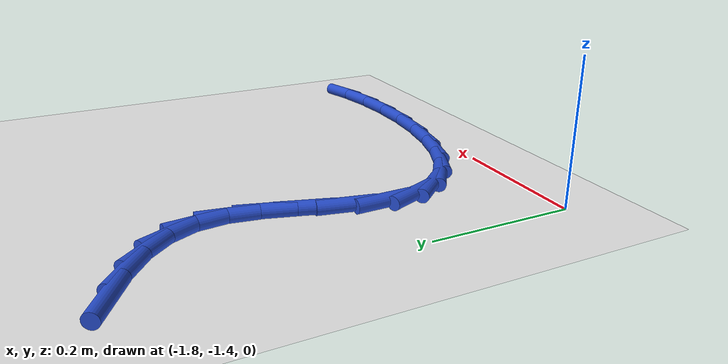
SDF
<sdf version="1.6">
 <world name="default">
  <model name="ground_plane">
   <static>1</static>
   <link name="link">
    <collision name="collision">
     <geometry><plane><normal>0 0 1</normal><size>100 100</size></plane></geometry>
     <surface><friction><ode><mu>100</mu><mu2>50</mu2></ode></friction></surface>
    </collision>
    <visual name="visual">
     <cast_shadows>0</cast_shadows>
     <geometry><plane><normal>0 0 1</normal><size>100 100</size></plane></geometry>
     <material>
      <script><uri>file://media/materials/scripts/gazebo.material</uri><name>Gazebo/WhiteGlow</name></script>
     </material>
    </visual>
   </link>
  </model>
  <model name="line">
   <link name="link_110">
    <pose>-1.7734945579756471 -0.8416956939638869 0.01 0 1.57 -0.5313624632419515</pose>
    <collision name="collision">
     <geometry><cylinder><radius>0.01</radius><length>0.08</length></cylinder></geometry>
    </collision>
    <visual name="visual">
     <material>
      <script><name>Gazebo/Blue</name><uri>file://media/materials/scripts/gazebo.material</uri></script>
     </material>
     <geometry><cylinder><radius>0.01</radius><length>0.08</length></cylinder></geometry>
    </visual>
   </link>
   <link name="link_111">
    <pose>-1.7310457765833414 -0.8666449088166526 0.01 0 1.57 -0.6617725610972109</pose>
    <collision name="collision">
     <geometry><cylinder><radius>0.01</radius><length>0.08</length></cylinder></geometry>
    </collision>
    <visual name="visual">
     <material>
      <script><name>Gazebo/Blue</name><uri>file://media/materials/scripts/gazebo.material</uri></script>
     </material>
     <geometry><cylinder><radius>0.01</radius><length>0.08</length></cylinder></geometry>
    </visual>
   </link>
   <link name="link_112">
    <pose>-1.6955286083273333 -0.8943109740696709 0.01 0 1.57 -0.8601564828133983</pose>
    <collision name="collision">
     <geometry><cylinder><radius>0.01</radius><length>0.08</length></cylinder></geometry>
    </collision>
    <visual name="visual">
     <material>
      <script><name>Gazebo/Blue</name><uri>file://media/materials/scripts/gazebo.material</uri></script>
     </material>
     <geometry><cylinder><radius>0.01</radius><length>0.08</length></cylinder></geometry>
    </visual>
   </link>
   <link name="link_113">
    <pose>-1.668660795700097 -0.9255293179163608 0.01 0 1.57 -1.1368348751783302</pose>
    <collision name="collision">
     <geometry><cylinder><radius>0.01</radius><length>0.08</length></cylinder></geometry>
    </collision>
    <visual name="visual">
     <material>
      <script><name>Gazebo/Blue</name><uri>file://media/materials/scripts/gazebo.material</uri></script>
     </material>
     <geometry><cylinder><radius>0.01</radius><length>0.08</length></cylinder></geometry>
    </visual>
   </link>
   <link name="link_114">
    <pose>-1.652160081194107 -0.961135368550142 0.01 0 1.57 -1.4627862792251112</pose>
    <collision name="collision">
     <geometry><cylinder><radius>0.01</radius><length>0.08</length></cylinder></geometry>
    </collision>
    <visual name="visual">
     <material>
      <script><name>Gazebo/Blue</name><uri>file://media/materials/scripts/gazebo.material</uri></script>
     </material>
     <geometry><cylinder><radius>0.01</radius><length>0.08</length></cylinder></geometry>
    </visual>
   </link>
   <link name="link_115">
    <pose>-1.6477333979097377 -1.0019598643572034 0.01 0 1.57 1.4148833865757744</pose>
    <collision name="collision">
     <geometry><cylinder><radius>0.01</radius><length>0.08</length></cylinder></geometry>
    </collision>
    <visual name="visual">
     <material>
      <script><name>Gazebo/Blue</name><uri>file://media/materials/scripts/gazebo.material</uri></script>
     </material>
     <geometry><cylinder><radius>0.01</radius><length>0.08</length></cylinder></geometry>
    </visual>
   </link>
   <link name="link_116">
    <pose>-1.654956035739066 -1.0479087002504888 0.01 0 1.57 1.2966157001727758</pose>
    <collision name="collision">
     <geometry><cylinder><radius>0.01</radius><length>0.08</length></cylinder></geometry>
    </collision>
    <visual name="visual">
     <material>
      <script><name>Gazebo/Blue</name><uri>file://media/materials/scripts/gazebo.material</uri></script>
     </material>
     <geometry><cylinder><radius>0.01</radius><length>0.08</length></cylinder></geometry>
    </visual>
   </link>
   <link name="link_117">
    <pose>-1.6687235547020451 -1.0968574043292483 0.01 0 1.57 1.284529829563111</pose>
    <collision name="collision">
     <geometry><cylinder><radius>0.01</radius><length>0.08</length></cylinder></geometry>
    </collision>
    <visual name="visual">
     <material>
      <script><name>Gazebo/Blue</name><uri>file://media/materials/scripts/gazebo.material</uri></script>
     </material>
     <geometry><cylinder><radius>0.01</radius><length>0.08</length></cylinder></geometry>
    </visual>
   </link>
   <link name="link_118">
    <pose>-1.683309967605338 -1.1464118376671768 0.01 0 1.57 1.3708633452989625</pose>
    <collision name="collision">
     <geometry><cylinder><radius>0.01</radius><length>0.08</length></cylinder></geometry>
    </collision>
    <visual name="visual">
     <material>
      <script><name>Gazebo/Blue</name><uri>file://media/materials/scripts/gazebo.material</uri></script>
     </material>
     <geometry><cylinder><radius>0.01</radius><length>0.08</length></cylinder></geometry>
    </visual>
   </link>
   <link name="link_119">
    <pose>-1.692989287255609 -1.1941778613379703 0.01 0 1.57 -1.5492678069849917</pose>
    <collision name="collision">
     <geometry><cylinder><radius>0.01</radius><length>0.08</length></cylinder></geometry>
    </collision>
    <visual name="visual">
     <material>
      <script><name>Gazebo/Blue</name><uri>file://media/materials/scripts/gazebo.material</uri></script>
     </material>
     <geometry><cylinder><radius>0.01</radius><length>0.08</length></cylinder></geometry>
    </visual>
   </link>
   <link name="link_120">
    <pose>-1.692050747621352 -1.2377663031274102 0.01 0 1.57 -1.1943281216407684</pose>
    <collision name="collision">
     <geometry><cylinder><radius>0.01</radius><length>0.08</length></cylinder></geometry>
    </collision>
    <visual name="visual">
     <material>
      <script><name>Gazebo/Blue</name><uri>file://media/materials/scripts/gazebo.material</uri></script>
     </material>
     <geometry><cylinder><radius>0.01</radius><length>0.08</length></cylinder></geometry>
    </visual>
   </link>
   <link name="link_121">
    <pose>-1.6771145324255916 -1.275548586920668 0.01 0 1.57 -0.8597059298276584</pose>
    <collision name="collision">
     <geometry><cylinder><radius>0.01</radius><length>0.08</length></cylinder></geometry>
    </collision>
    <visual name="visual">
     <material>
      <script><name>Gazebo/Blue</name><uri>file://media/materials/scripts/gazebo.material</uri></script>
     </material>
     <geometry><cylinder><radius>0.01</radius><length>0.08</length></cylinder></geometry>
    </visual>
   </link>
   <link name="link_122">
    <pose>-1.6496182425061277 -1.307468074676445 0.01 0 1.57 -0.6032542158095736</pose>
    <collision name="collision">
     <geometry><cylinder><radius>0.01</radius><length>0.08</length></cylinder></geometry>
    </collision>
    <visual name="visual">
     <material>
      <script><name>Gazebo/Blue</name><uri>file://media/materials/scripts/gazebo.material</uri></script>
     </material>
     <geometry><cylinder><radius>0.01</radius><length>0.08</length></cylinder></geometry>
    </visual>
   </link>
   <link name="link_123">
    <pose>-1.6115957694474812 -1.3336626998645535 0.01 0 1.57 -0.41704724688747713</pose>
    <collision name="collision">
     <geometry><cylinder><radius>0.01</radius><length>0.08</length></cylinder></geometry>
    </collision>
    <visual name="visual">
     <material>
      <script><name>Gazebo/Blue</name><uri>file://media/materials/scripts/gazebo.material</uri></script>
     </material>
     <geometry><cylinder><radius>0.01</radius><length>0.08</length></cylinder></geometry>
    </visual>
   </link>
   <link name="link_124">
    <pose>-1.5650810048341726 -1.3542703959548057 0.01 0 1.57 -0.27870993558053997</pose>
    <collision name="collision">
     <geometry><cylinder><radius>0.01</radius><length>0.08</length></cylinder></geometry>
    </collision>
    <visual name="visual">
     <material>
      <script><name>Gazebo/Blue</name><uri>file://media/materials/scripts/gazebo.material</uri></script>
     </material>
     <geometry><cylinder><radius>0.01</radius><length>0.08</length></cylinder></geometry>
    </visual>
   </link>
   <link name="link_125">
    <pose>-1.512107840250722 -1.3694290964170124 0.01 0 1.57 -0.16991430019009277</pose>
    <collision name="collision">
     <geometry><cylinder><radius>0.01</radius><length>0.08</length></cylinder></geometry>
    </collision>
    <visual name="visual">
     <material>
      <script><name>Gazebo/Blue</name><uri>file://media/materials/scripts/gazebo.material</uri></script>
     </material>
     <geometry><cylinder><radius>0.01</radius><length>0.08</length></cylinder></geometry>
    </visual>
   </link>
   <link name="link_126">
    <pose>-1.4547101672816496 -1.3792767347209856 0.01 0 1.57 -0.0780256408400909</pose>
    <collision name="collision">
     <geometry><cylinder><radius>0.01</radius><length>0.08</length></cylinder></geometry>
    </collision>
    <visual name="visual">
     <material>
      <script><name>Gazebo/Blue</name><uri>file://media/materials/scripts/gazebo.material</uri></script>
     </material>
     <geometry><cylinder><radius>0.01</radius><length>0.08</length></cylinder></geometry>
    </visual>
   </link>
   <link name="link_127">
    <pose>-1.394921877511478 -1.3839512443365372 0.01 0 1.57 0.005996860744471498</pose>
    <collision name="collision">
     <geometry><cylinder><radius>0.01</radius><length>0.08</length></cylinder></geometry>
    </collision>
    <visual name="visual">
     <material>
      <script><name>Gazebo/Blue</name><uri>file://media/materials/scripts/gazebo.material</uri></script>
     </material>
     <geometry><cylinder><radius>0.01</radius><length>0.08</length></cylinder></geometry>
    </visual>
   </link>
   <link name="link_128">
    <pose>-1.3347768625247263 -1.3835905587334778 0.01 0 1.57 0.08968761177463248</pose>
    <collision name="collision">
     <geometry><cylinder><radius>0.01</radius><length>0.08</length></cylinder></geometry>
    </collision>
    <visual name="visual">
     <material>
      <script><name>Gazebo/Blue</name><uri>file://media/materials/scripts/gazebo.material</uri></script>
     </material>
     <geometry><cylinder><radius>0.01</radius><length>0.08</length></cylinder></geometry>
    </visual>
   </link>
   <link name="link_129">
    <pose>-1.2763090139059154 -1.3783326113816206 0.01 0 1.57 0.18056749706420783</pose>
    <collision name="collision">
     <geometry><cylinder><radius>0.01</radius><length>0.08</length></cylinder></geometry>
    </collision>
    <visual name="visual">
     <material>
      <script><name>Gazebo/Blue</name><uri>file://media/materials/scripts/gazebo.material</uri></script>
     </material>
     <geometry><cylinder><radius>0.01</radius><length>0.08</length></cylinder></geometry>
    </visual>
   </link>
   <link name="link_130">
    <pose>-1.2214918624447662 -1.368325418156378 0.01 0 1.57 0.2776894478036446</pose>
    <collision name="collision">
     <geometry><cylinder><radius>0.01</radius><length>0.08</length></cylinder></geometry>
    </collision>
    <visual name="visual">
     <material>
      <script><name>Gazebo/Blue</name><uri>file://media/materials/scripts/gazebo.material</uri></script>
     </material>
     <geometry><cylinder><radius>0.01</radius><length>0.08</length></cylinder></geometry>
    </visual>
   </link>
  </model>
 </world>
</sdf>
